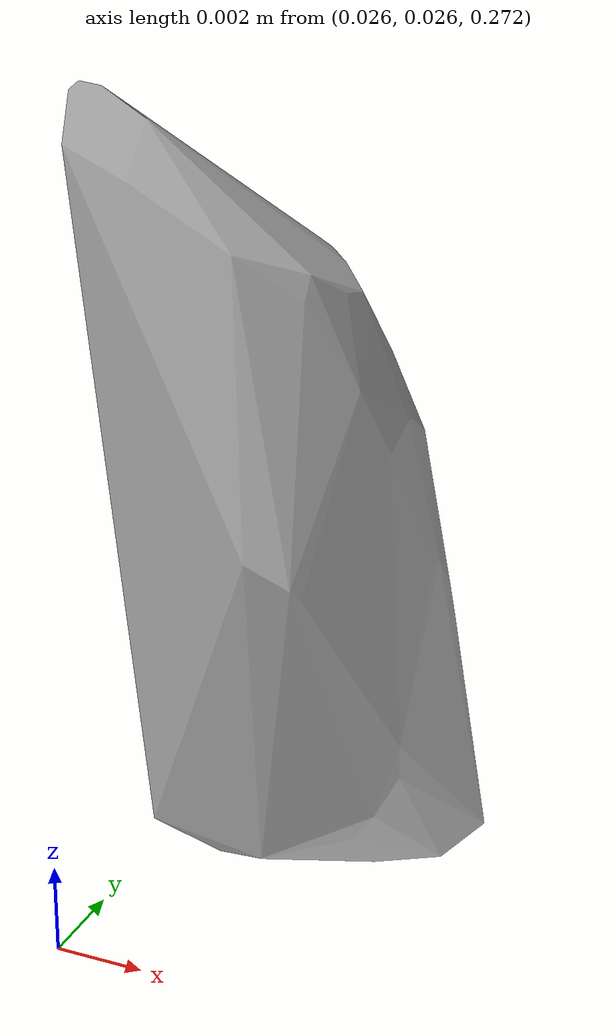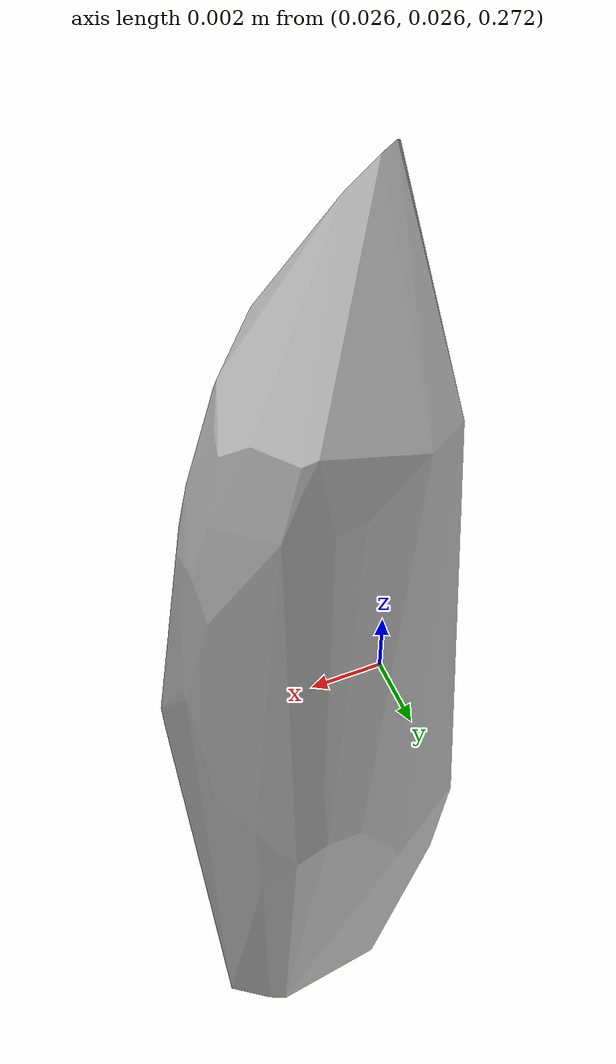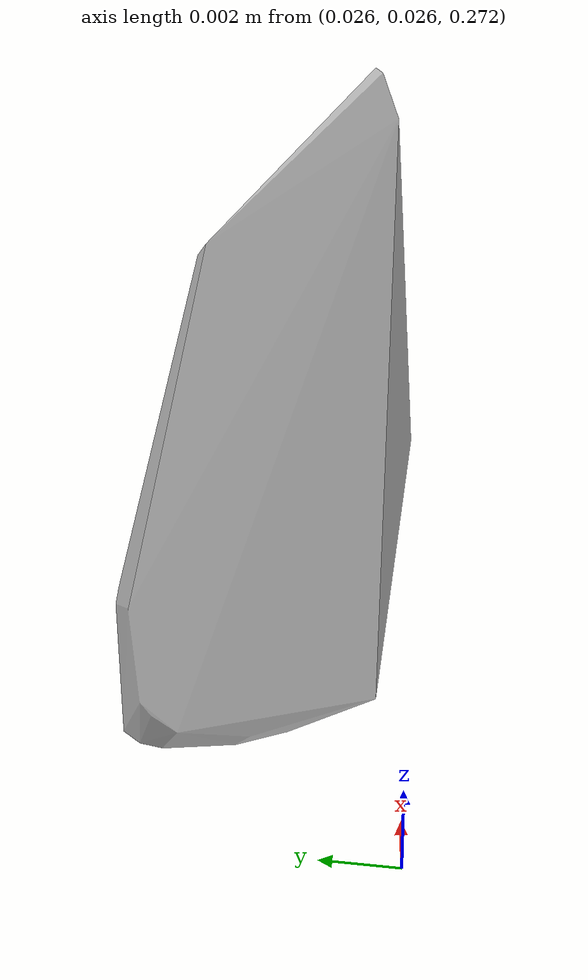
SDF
<?xml version="1.0"?>
<sdf version="1.7">
  <model name="vascular_partexport046">
    <link name="vascular_partexport046_body">
      <visual name="vascular_partexport046_visual">
        <geometry>
          <mesh>
            <uri>vascular_partexport046.obj</uri>
          </mesh>
        </geometry>
      </visual>
      <collision name="vascular_partexport046_collision">
        <geometry>
          <mesh>
            <uri>vascular_partexport046.obj</uri>
          </mesh>
        </geometry>
      </collision>
    </link>
    <frame name="vascular_partexport046_center">
      <pose relative_to="vascular_partexport046_body">0 0 0 0 0 0</pose>
    </frame>
  </model>
</sdf>
